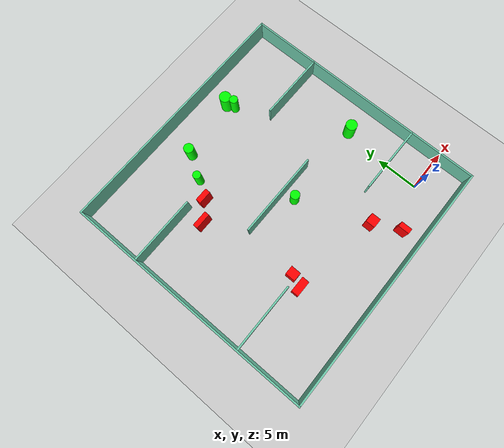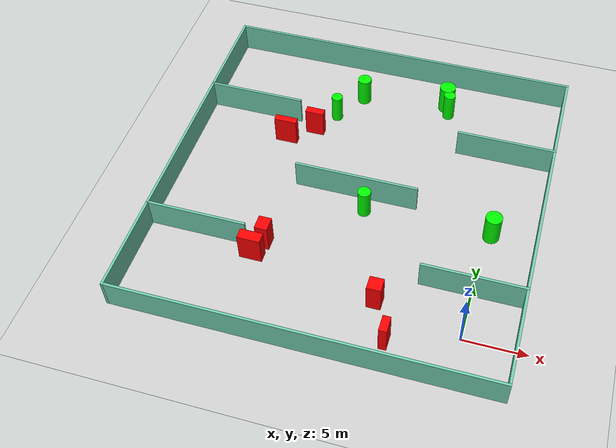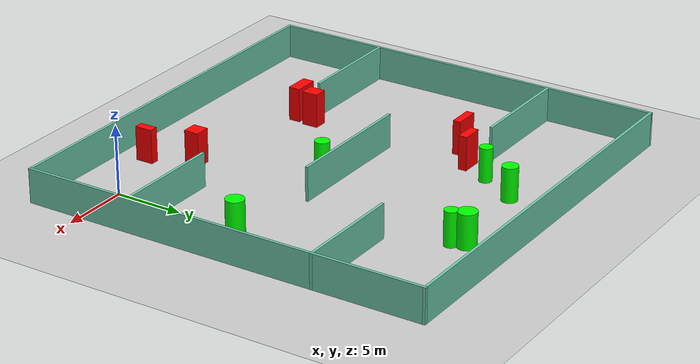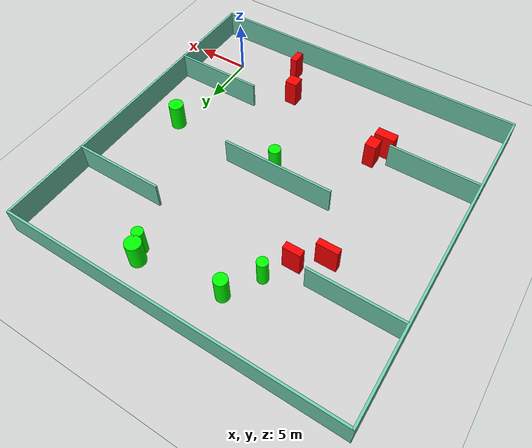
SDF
<sdf version="1.7">
 <world name="default">
  <light name="sun" type="directional">
   <pose>0 0 10 0 -0 0</pose>
   <diffuse>0.8 0.8 0.8 1</diffuse>
   <specular>0.2 0.2 0.2 1</specular>
   <attenuation>
    <range>1000</range>
    <constant>0.9</constant>
    <linear>0.01</linear>
    <quadratic>0.001</quadratic>
   </attenuation>
   <direction>-0.5 0.1 -0.9</direction>
   <spot><inner_angle>0</inner_angle><outer_angle>0</outer_angle><falloff>0</falloff></spot>
  </light>
  <model name="ground_plane">
   <static>1</static>
   <link name="link">
    <collision name="collision">
     <geometry><plane><normal>0 0 1</normal><size>100 100</size></plane></geometry>
     <surface>
      <contact><collide_bitmask>65535</collide_bitmask></contact>
      <friction><ode><mu>100</mu><mu2>50</mu2></ode></friction>
     </surface>
    </collision>
    <visual name="visual">
     <cast_shadows>0</cast_shadows>
     <geometry><plane><normal>0 0 1</normal><size>100 100</size></plane></geometry>
     <material>
      <script><uri>file://media/materials/scripts/gazebo.material</uri><name>Gazebo/Grey</name></script>
     </material>
    </visual>
   </link>
  </model>
  <gravity>0 0 -9.8</gravity>
  <magnetic_field>6e-06 2.3e-05 -4.2e-05</magnetic_field>
  <atmosphere type="adiabatic"/>
  <physics type="ode">
   <max_step_size>0.001</max_step_size>
   <real_time_factor>1</real_time_factor>
   <real_time_update_rate>1000</real_time_update_rate>
  </physics>
  <scene><ambient>0.4 0.4 0.4 1</ambient><background>0.7 0.7 0.7 1</background><shadows>1</shadows></scene>
  <spherical_coordinates>
   <surface_model>EARTH_WGS84</surface_model>
   <latitude_deg>0</latitude_deg>
   <longitude_deg>0</longitude_deg>
   <elevation>0</elevation>
   <heading_deg>0</heading_deg>
  </spherical_coordinates>
  <model name="my_base_walls">
   <link name="Wall_10">
    <collision name="Wall_10_Collision">
     <geometry><box><size>8.2 0.2 2.5</size></box></geometry>
     <pose>0 0 1.25 0 -0 0</pose>
    </collision>
    <visual name="Wall_10_Visual">
     <pose>0 0 1.25 0 -0 0</pose>
     <geometry><box><size>8.2 0.2 2.5</size></box></geometry>
     <material>
      <script><uri>file://media/materials/scripts/gazebo.material</uri><name>Gazebo/Grey</name></script>
      <ambient>0.435294 0.796078 0.67451 1</ambient>
     </material>
     <meta><layer>0</layer></meta>
    </visual>
    <pose>-11 -7 0 0 -0 0</pose>
   </link>
   <link name="Wall_12">
    <collision name="Wall_12_Collision">
     <geometry><box><size>8.2 0.2 2.5</size></box></geometry>
     <pose>0 0 1.25 0 -0 0</pose>
    </collision>
    <visual name="Wall_12_Visual">
     <pose>0 0 1.25 0 -0 0</pose>
     <geometry><box><size>8.2 0.2 2.5</size></box></geometry>
     <material>
      <script><uri>file://media/materials/scripts/gazebo.material</uri><name>Gazebo/Grey</name></script>
      <ambient>0.435294 0.796078 0.67451 1</ambient>
     </material>
     <meta><layer>0</layer></meta>
    </visual>
    <pose>-11 7 0 0 -0 0</pose>
   </link>
   <link name="Wall_14">
    <collision name="Wall_14_Collision">
     <geometry><box><size>8.2 0.2 2.5</size></box></geometry>
     <pose>0 0 1.25 0 -0 0</pose>
    </collision>
    <visual name="Wall_14_Visual">
     <pose>0 0 1.25 0 -0 0</pose>
     <geometry><box><size>8.2 0.2 2.5</size></box></geometry>
     <material>
      <script><uri>file://media/materials/scripts/gazebo.material</uri><name>Gazebo/Grey</name></script>
      <ambient>0.435294 0.796078 0.67451 1</ambient>
     </material>
     <meta><layer>0</layer></meta>
    </visual>
    <pose>11 7 0 0 -0 3.14159</pose>
   </link>
   <link name="Wall_16">
    <collision name="Wall_16_Collision">
     <geometry><box><size>10.2 0.2 2.5</size></box></geometry>
     <pose>0 0 1.25 0 -0 0</pose>
    </collision>
    <visual name="Wall_16_Visual">
     <pose>0 0 1.25 0 -0 0</pose>
     <geometry><box><size>10.2 0.2 2.5</size></box></geometry>
     <material>
      <script><uri>file://media/materials/scripts/gazebo.material</uri><name>Gazebo/Grey</name></script>
      <ambient>0.435294 0.796078 0.67451 1</ambient>
     </material>
     <meta><layer>0</layer></meta>
    </visual>
    <pose>0 0 0 0 -0 3.14159</pose>
   </link>
   <link name="Wall_2">
    <collision name="Wall_2_Collision">
     <geometry><box><size>30.2 0.2 2.5</size></box></geometry>
     <pose>0 0 1.25 0 -0 0</pose>
    </collision>
    <visual name="Wall_2_Visual">
     <pose>0 0 1.25 0 -0 0</pose>
     <geometry><box><size>30.2 0.2 2.5</size></box></geometry>
     <material>
      <script><uri>file://media/materials/scripts/gazebo.material</uri><name>Gazebo/Grey</name></script>
      <ambient>0.435294 0.796078 0.67451 1</ambient>
     </material>
     <meta><layer>0</layer></meta>
    </visual>
    <pose>0 -15 0 0 -0 3.14159</pose>
   </link>
   <link name="Wall_3">
    <collision name="Wall_3_Collision">
     <geometry><box><size>30.2 0.2 2.5</size></box></geometry>
     <pose>0 0 1.25 0 -0 0</pose>
    </collision>
    <visual name="Wall_3_Visual">
     <pose>0 0 1.25 0 -0 0</pose>
     <geometry><box><size>30.2 0.2 2.5</size></box></geometry>
     <material>
      <script><uri>file://media/materials/scripts/gazebo.material</uri><name>Gazebo/Grey</name></script>
      <ambient>0.435294 0.796078 0.67451 1</ambient>
     </material>
     <meta><layer>0</layer></meta>
    </visual>
    <pose>-15 0 0 0 -0 1.5708</pose>
   </link>
   <link name="Wall_4">
    <collision name="Wall_4_Collision">
     <geometry><box><size>30.2 0.2 2.5</size></box></geometry>
     <pose>0 0 1.25 0 -0 0</pose>
    </collision>
    <visual name="Wall_4_Visual">
     <pose>0 0 1.25 0 -0 0</pose>
     <geometry><box><size>30.2 0.2 2.5</size></box></geometry>
     <material>
      <script><uri>file://media/materials/scripts/gazebo.material</uri><name>Gazebo/Grey</name></script>
      <ambient>0.435294 0.796078 0.67451 1</ambient>
     </material>
     <meta><layer>0</layer></meta>
    </visual>
    <pose>0 15 0 0 -0 0</pose>
   </link>
   <link name="Wall_6">
    <collision name="Wall_6_Collision">
     <geometry><box><size>30.2 0.2 2.5</size></box></geometry>
     <pose>0 0 1.25 0 -0 0</pose>
    </collision>
    <visual name="Wall_6_Visual">
     <pose>0 0 1.25 0 -0 0</pose>
     <geometry><box><size>30.2 0.2 2.5</size></box></geometry>
     <material>
      <script><uri>file://media/materials/scripts/gazebo.material</uri><name>Gazebo/Grey</name></script>
      <ambient>0.435294 0.796078 0.67451 1</ambient>
     </material>
     <meta><layer>0</layer></meta>
    </visual>
    <pose>15 0 0 0 -0 1.5708</pose>
   </link>
   <link name="Wall_8">
    <collision name="Wall_8_Collision">
     <geometry><box><size>8.2 0.2 2.5</size></box></geometry>
     <pose>0 0 1.25 0 -0 0</pose>
    </collision>
    <visual name="Wall_8_Visual">
     <pose>0 0 1.25 0 -0 0</pose>
     <geometry><box><size>8.2 0.2 2.5</size></box></geometry>
     <material>
      <script><uri>file://media/materials/scripts/gazebo.material</uri><name>Gazebo/Grey</name></script>
      <ambient>0.435294 0.796078 0.67451 1</ambient>
     </material>
     <meta><layer>0</layer></meta>
    </visual>
    <pose>11 -7 0 0 -0 3.14159</pose>
   </link>
   <static>1</static>
   <pose>-11 11 0 0 -0 0</pose>
  </model>
  <model name="cylinder1">
   <static>1</static>
   <link name="link">
    <inertial>
     <mass>1</mass>
     <inertia><ixx>0.5</ixx><ixy>0</ixy><ixz>0</ixz><iyy>0.5</iyy><iyz>0</iyz><izz>1</izz></inertia>
    </inertial>
    <collision name="collision">
     <geometry><cylinder><radius>0.4675175821839799</radius><length>2.5</length></cylinder></geometry>
    </collision>
    <visual name="visual">
     <geometry><cylinder><radius>0.4675175821839799</radius><length>2.5</length></cylinder></geometry>
     <material>
      <ambient>0 1 0 1</ambient>
      <diffuse>0 1 0 1</diffuse>
      <specular>0.1 0.1 0.1 1</specular>
      <emissive>0 0 0 0</emissive>
     </material>
    </visual>
   </link>
   <pose>-15.026701581201547 19.273938912258796 1.25 0 0 0</pose>
  </model>
  <model name="cylinder2">
   <static>1</static>
   <link name="link">
    <inertial>
     <mass>1</mass>
     <inertia><ixx>0.5</ixx><ixy>0</ixy><ixz>0</ixz><iyy>0.5</iyy><iyz>0</iyz><izz>1</izz></inertia>
    </inertial>
    <collision name="collision">
     <geometry><cylinder><radius>0.684634892275934</radius><length>2.5</length></cylinder></geometry>
    </collision>
    <visual name="visual">
     <geometry><cylinder><radius>0.684634892275934</radius><length>2.5</length></cylinder></geometry>
     <material>
      <ambient>0 1 0 1</ambient>
      <diffuse>0 1 0 1</diffuse>
      <specular>0.1 0.1 0.1 1</specular>
      <emissive>0 0 0 0</emissive>
     </material>
    </visual>
   </link>
   <pose>-6.024436459053019 23.055761140012518 1.25 0 0 0</pose>
  </model>
  <model name="cylinder3">
   <static>1</static>
   <link name="link">
    <inertial>
     <mass>1</mass>
     <inertia><ixx>0.5</ixx><ixy>0</ixy><ixz>0</ixz><iyy>0.5</iyy><iyz>0</iyz><izz>1</izz></inertia>
    </inertial>
    <collision name="collision">
     <geometry><cylinder><radius>0.4913474862200028</radius><length>2.5</length></cylinder></geometry>
    </collision>
    <visual name="visual">
     <geometry><cylinder><radius>0.4913474862200028</radius><length>2.5</length></cylinder></geometry>
     <material>
      <ambient>0 1 0 1</ambient>
      <diffuse>0 1 0 1</diffuse>
      <specular>0.1 0.1 0.1 1</specular>
      <emissive>0 0 0 0</emissive>
     </material>
    </visual>
   </link>
   <pose>-5.647007421983057 22.10782530582593 1.25 0 0 0</pose>
  </model>
  <model name="cylinder4">
   <static>1</static>
   <link name="link">
    <inertial>
     <mass>1</mass>
     <inertia><ixx>0.5</ixx><ixy>0</ixy><ixz>0</ixz><iyy>0.5</iyy><iyz>0</iyz><izz>1</izz></inertia>
    </inertial>
    <collision name="collision">
     <geometry><cylinder><radius>0.6633222069983752</radius><length>2.5</length></cylinder></geometry>
    </collision>
    <visual name="visual">
     <geometry><cylinder><radius>0.6633222069983752</radius><length>2.5</length></cylinder></geometry>
     <material>
      <ambient>0 1 0 1</ambient>
      <diffuse>0 1 0 1</diffuse>
      <specular>0.1 0.1 0.1 1</specular>
      <emissive>0 0 0 0</emissive>
     </material>
    </visual>
   </link>
   <pose>0.4401569810007757 9.792409130950563 1.25 0 0 0</pose>
  </model>
  <model name="cylinder5">
   <static>1</static>
   <link name="link">
    <inertial>
     <mass>1</mass>
     <inertia><ixx>0.5</ixx><ixy>0</ixy><ixz>0</ixz><iyy>0.5</iyy><iyz>0</iyz><izz>1</izz></inertia>
    </inertial>
    <collision name="collision">
     <geometry><cylinder><radius>0.5343617979122631</radius><length>2.5</length></cylinder></geometry>
    </collision>
    <visual name="visual">
     <geometry><cylinder><radius>0.5343617979122631</radius><length>2.5</length></cylinder></geometry>
     <material>
      <ambient>0 1 0 1</ambient>
      <diffuse>0 1 0 1</diffuse>
      <specular>0.1 0.1 0.1 1</specular>
      <emissive>0 0 0 0</emissive>
     </material>
    </visual>
   </link>
   <pose>-9.919261284540724 9.575842991446285 1.25 0 0 0</pose>
  </model>
  <model name="cylinder6">
   <static>1</static>
   <link name="link">
    <inertial>
     <mass>1</mass>
     <inertia><ixx>0.5</ixx><ixy>0</ixy><ixz>0</ixz><iyy>0.5</iyy><iyz>0</iyz><izz>1</izz></inertia>
    </inertial>
    <collision name="collision">
     <geometry><cylinder><radius>0.5767208211121251</radius><length>2.5</length></cylinder></geometry>
    </collision>
    <visual name="visual">
     <geometry><cylinder><radius>0.5767208211121251</radius><length>2.5</length></cylinder></geometry>
     <material>
      <ambient>0 1 0 1</ambient>
      <diffuse>0 1 0 1</diffuse>
      <specular>0.1 0.1 0.1 1</specular>
      <emissive>0 0 0 0</emissive>
     </material>
    </visual>
   </link>
   <pose>-13.303226876300258 22.056567354375286 1.25 0 0 0</pose>
  </model>
  <model name="box1">
   <static>1</static>
   <link name="link">
    <inertial>
     <mass>1</mass>
     <inertia><ixx>0.083</ixx><ixy>0</ixy><ixz>0</ixz><iyy>0.083</iyy><iyz>0</iyz><izz>0.083</izz></inertia>
    </inertial>
    <collision name="collision">
     <geometry><box><size>1.0303070753177217 1.1873896234483006 2.5</size></box></geometry>
    </collision>
    <visual name="visual">
     <geometry><box><size>1.0303070753177217 1.1873896234483006 2.5</size></box></geometry>
     <material>
      <ambient>1 0 0 1</ambient>
      <diffuse>1 0 0 1</diffuse>
      <specular>0.1 0.1 0.1 1</specular>
      <emissive>0 0 0 0</emissive>
     </material>
    </visual>
    <sensor name="my_contact" type="contact">
     <contact><collision>box_collision</collision><topic>__default_topic__</topic></contact>
    </sensor>
   </link>
   <pose>-16.574120113368465 4.4496698988016785 1.25 0 0 0</pose>
  </model>
  <model name="box2">
   <static>1</static>
   <link name="link">
    <inertial>
     <mass>1</mass>
     <inertia><ixx>0.083</ixx><ixy>0</ixy><ixz>0</ixz><iyy>0.083</iyy><iyz>0</iyz><izz>0.083</izz></inertia>
    </inertial>
    <collision name="collision">
     <geometry><box><size>0.6305333878764928 1.3030377934349673 2.5</size></box></geometry>
    </collision>
    <visual name="visual">
     <geometry><box><size>0.6305333878764928 1.3030377934349673 2.5</size></box></geometry>
     <material>
      <ambient>1 0 0 1</ambient>
      <diffuse>1 0 0 1</diffuse>
      <specular>0.1 0.1 0.1 1</specular>
      <emissive>0 0 0 0</emissive>
     </material>
    </visual>
    <sensor name="my_contact" type="contact">
     <contact><collision>box_collision</collision><topic>__default_topic__</topic></contact>
    </sensor>
   </link>
   <pose>-5.3003851919345735 -1.6933982396112581 1.25 0 0 0</pose>
  </model>
  <model name="box3">
   <static>1</static>
   <link name="link">
    <inertial>
     <mass>1</mass>
     <inertia><ixx>0.083</ixx><ixy>0</ixy><ixz>0</ixz><iyy>0.083</iyy><iyz>0</iyz><izz>0.083</izz></inertia>
    </inertial>
    <collision name="collision">
     <geometry><box><size>1.8397212537199712 0.8682865304450411 2.5</size></box></geometry>
    </collision>
    <visual name="visual">
     <geometry><box><size>1.8397212537199712 0.8682865304450411 2.5</size></box></geometry>
     <material>
      <ambient>1 0 0 1</ambient>
      <diffuse>1 0 0 1</diffuse>
      <specular>0.1 0.1 0.1 1</specular>
      <emissive>0 0 0 0</emissive>
     </material>
    </visual>
    <sensor name="my_contact" type="contact">
     <contact><collision>box_collision</collision><topic>__default_topic__</topic></contact>
    </sensor>
   </link>
   <pose>-17.13491717929882 3.0412958150861122 1.25 0 0 0</pose>
  </model>
  <model name="box4">
   <static>1</static>
   <link name="link">
    <inertial>
     <mass>1</mass>
     <inertia><ixx>0.083</ixx><ixy>0</ixy><ixz>0</ixz><iyy>0.083</iyy><iyz>0</iyz><izz>0.083</izz></inertia>
    </inertial>
    <collision name="collision">
     <geometry><box><size>1.1236099566328077 1.1094645626668251 2.5</size></box></geometry>
    </collision>
    <visual name="visual">
     <geometry><box><size>1.1236099566328077 1.1094645626668251 2.5</size></box></geometry>
     <material>
      <ambient>1 0 0 1</ambient>
      <diffuse>1 0 0 1</diffuse>
      <specular>0.1 0.1 0.1 1</specular>
      <emissive>0 0 0 0</emissive>
     </material>
    </visual>
    <sensor name="my_contact" type="contact">
     <contact><collision>box_collision</collision><topic>__default_topic__</topic></contact>
    </sensor>
   </link>
   <pose>-6.8127631170597525 1.3898868896581185 1.25 0 0 0</pose>
  </model>
  <model name="box5">
   <static>1</static>
   <link name="link">
    <inertial>
     <mass>1</mass>
     <inertia><ixx>0.083</ixx><ixy>0</ixy><ixz>0</ixz><iyy>0.083</iyy><iyz>0</iyz><izz>0.083</izz></inertia>
    </inertial>
    <collision name="collision">
     <geometry><box><size>1.8829758564158687 0.5761525736088906 2.5</size></box></geometry>
    </collision>
    <visual name="visual">
     <geometry><box><size>1.8829758564158687 0.5761525736088906 2.5</size></box></geometry>
     <material>
      <ambient>1 0 0 1</ambient>
      <diffuse>1 0 0 1</diffuse>
      <specular>0.1 0.1 0.1 1</specular>
      <emissive>0 0 0 0</emissive>
     </material>
    </visual>
    <sensor name="my_contact" type="contact">
     <contact><collision>box_collision</collision><topic>__default_topic__</topic></contact>
    </sensor>
   </link>
   <pose>-18.44296009918832 15.541971550596372 1.25 0 0 0</pose>
  </model>
  <model name="box6">
   <static>1</static>
   <link name="link">
    <inertial>
     <mass>1</mass>
     <inertia><ixx>0.083</ixx><ixy>0</ixy><ixz>0</ixz><iyy>0.083</iyy><iyz>0</iyz><izz>0.083</izz></inertia>
    </inertial>
    <collision name="collision">
     <geometry><box><size>1.5623554474261192 0.6299798727769568 2.5</size></box></geometry>
    </collision>
    <visual name="visual">
     <geometry><box><size>1.5623554474261192 0.6299798727769568 2.5</size></box></geometry>
     <material>
      <ambient>1 0 0 1</ambient>
      <diffuse>1 0 0 1</diffuse>
      <specular>0.1 0.1 0.1 1</specular>
      <emissive>0 0 0 0</emissive>
     </material>
    </visual>
    <sensor name="my_contact" type="contact">
     <contact><collision>box_collision</collision><topic>__default_topic__</topic></contact>
    </sensor>
   </link>
   <pose>-16.356450543254613 17.14526169337141 1.25 0 0 0</pose>
  </model>
 </world>
</sdf>
